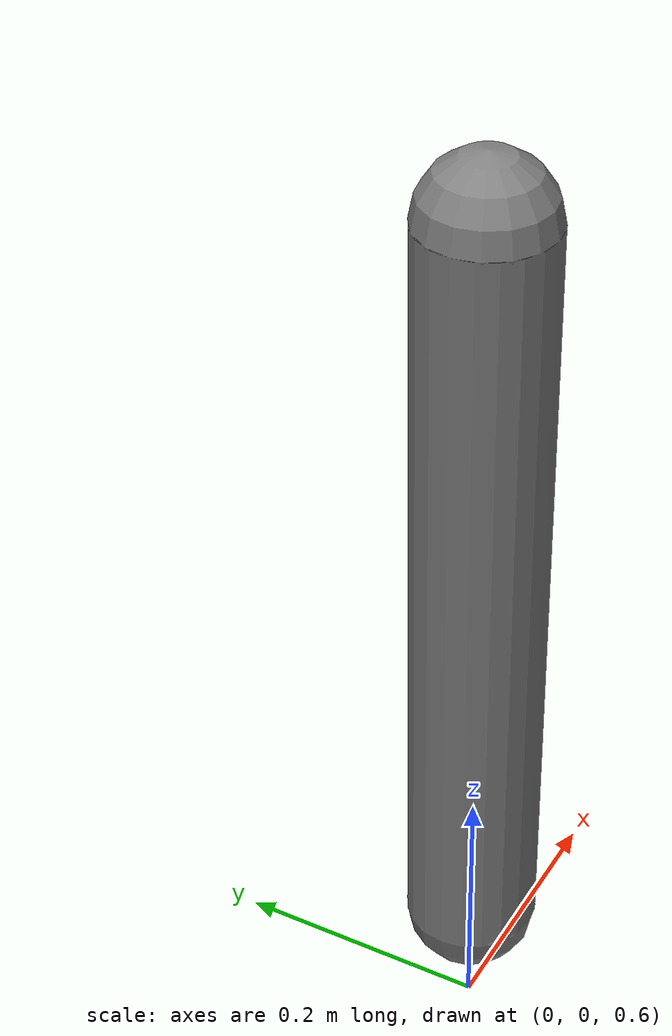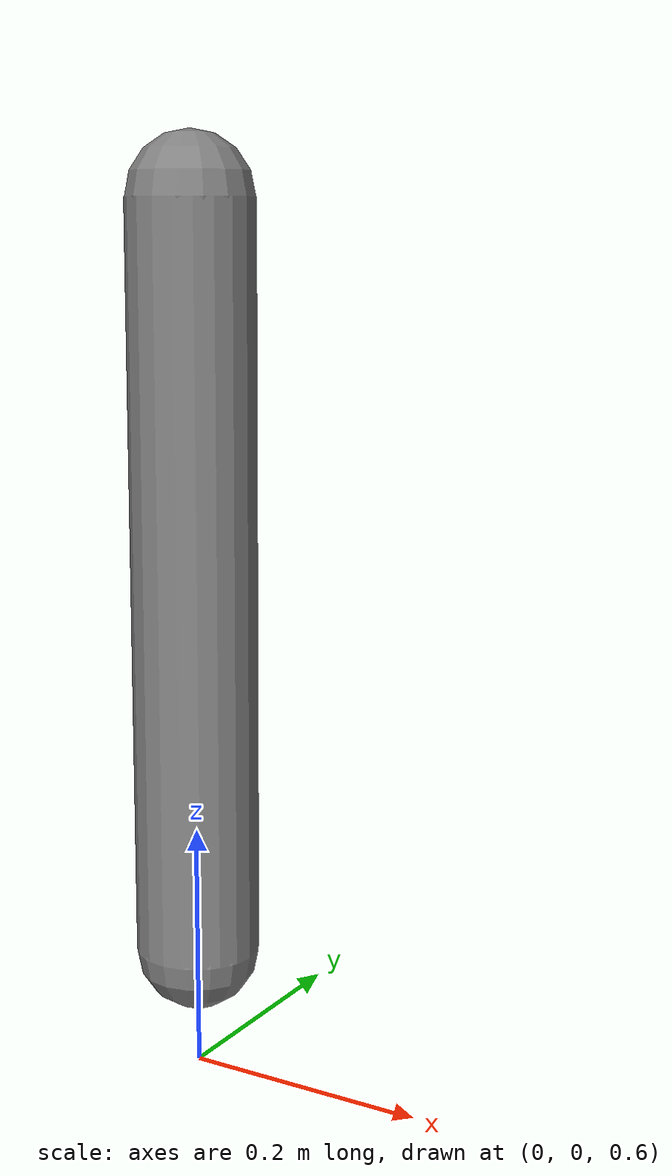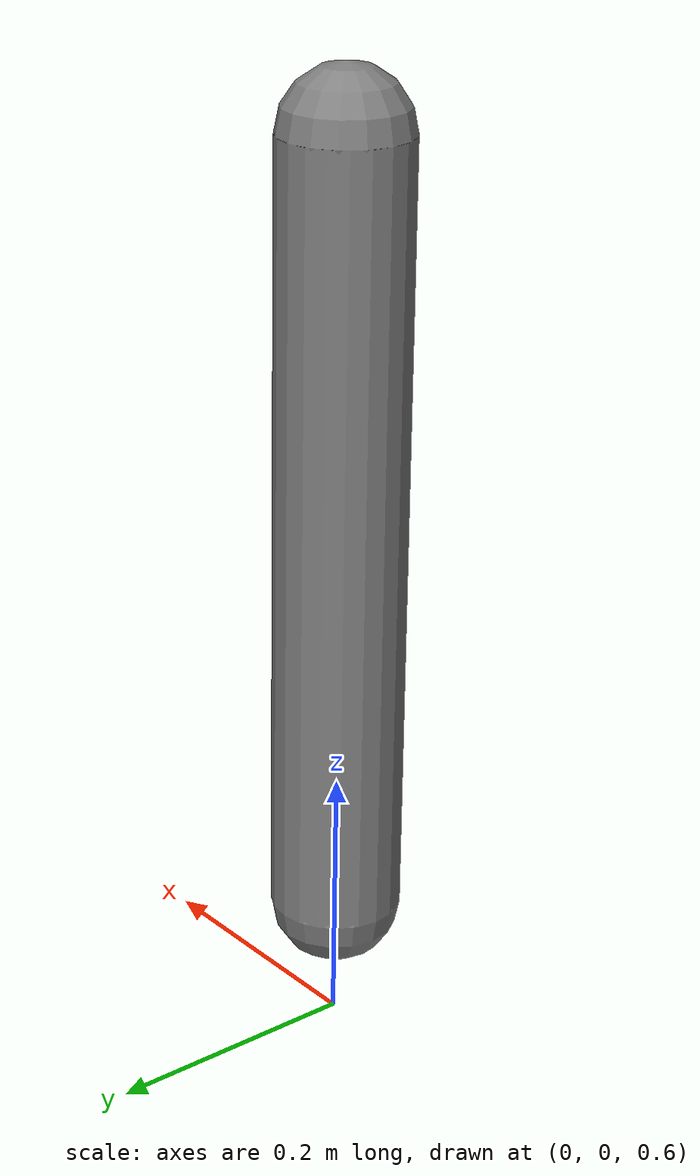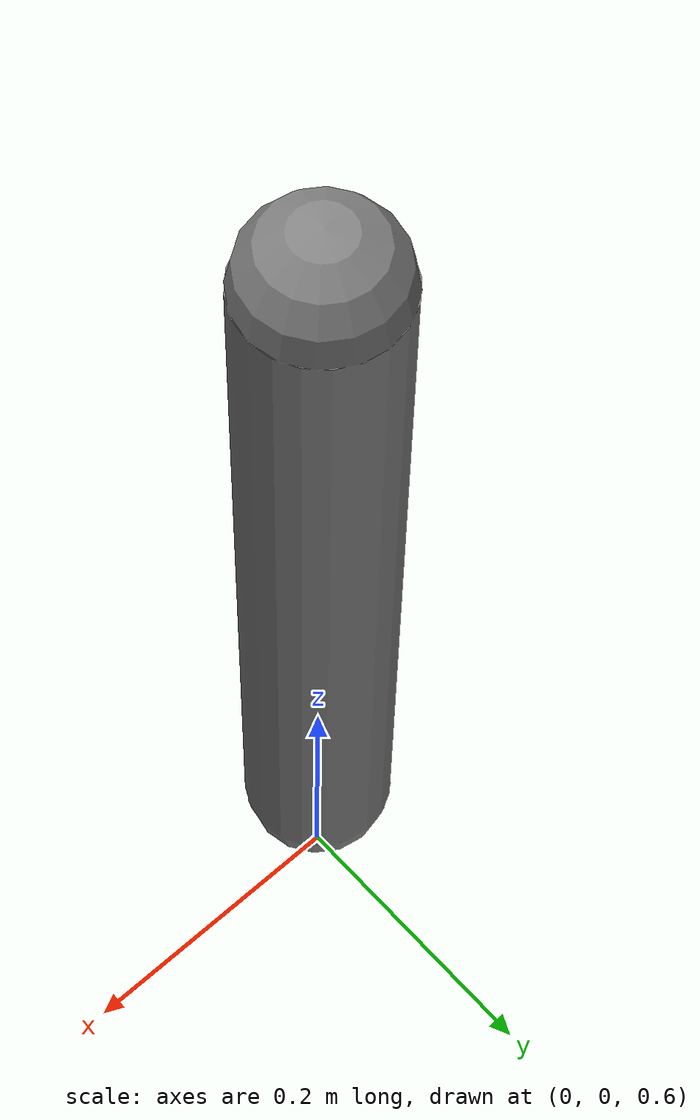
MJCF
<mujoco model="dt28_hinge">
        <option gravity="0 0 0" timestep="0.001"/>
        <worldbody>
            <body name="b1" pos="0 0 1">
                <joint name="J1" type="hinge" axis="0 1 0"/>
                <geom type="capsule" size="0.05 0.3" mass="1.0"/>
            </body>
        </worldbody>
        <tendon>
            <fixed name="T1"><joint joint="J1" coef="2.5"/></fixed>
        </tendon>
    </mujoco>
